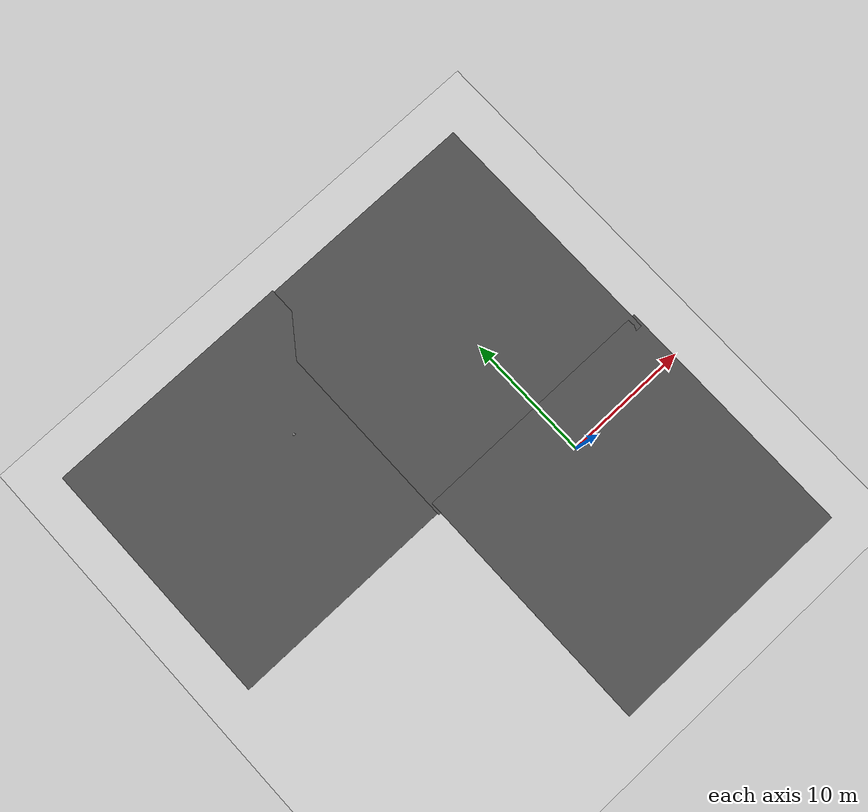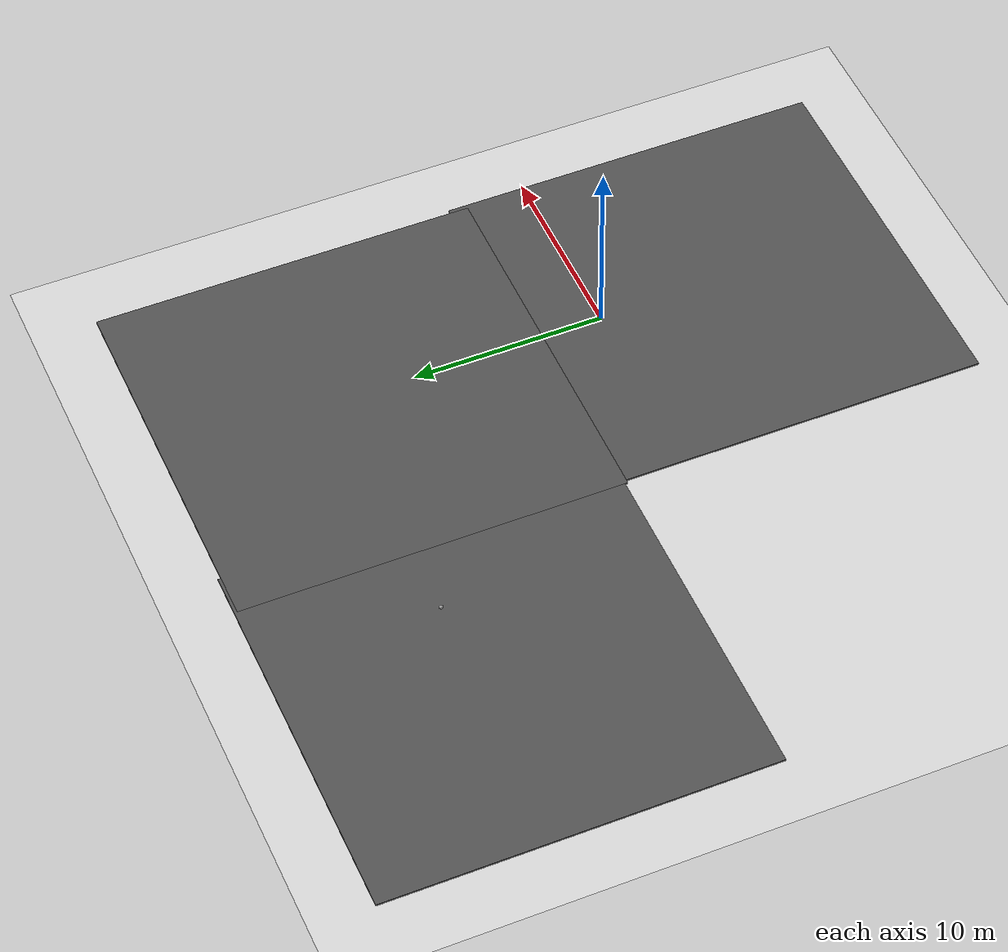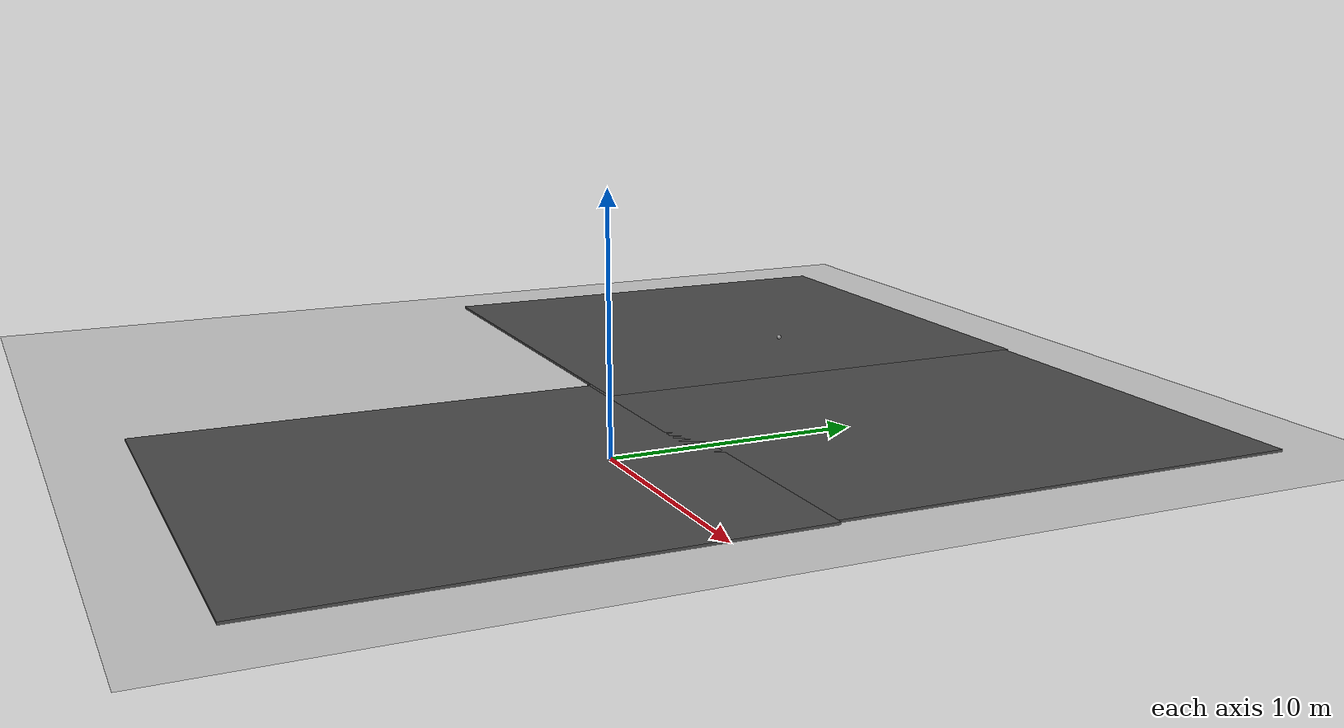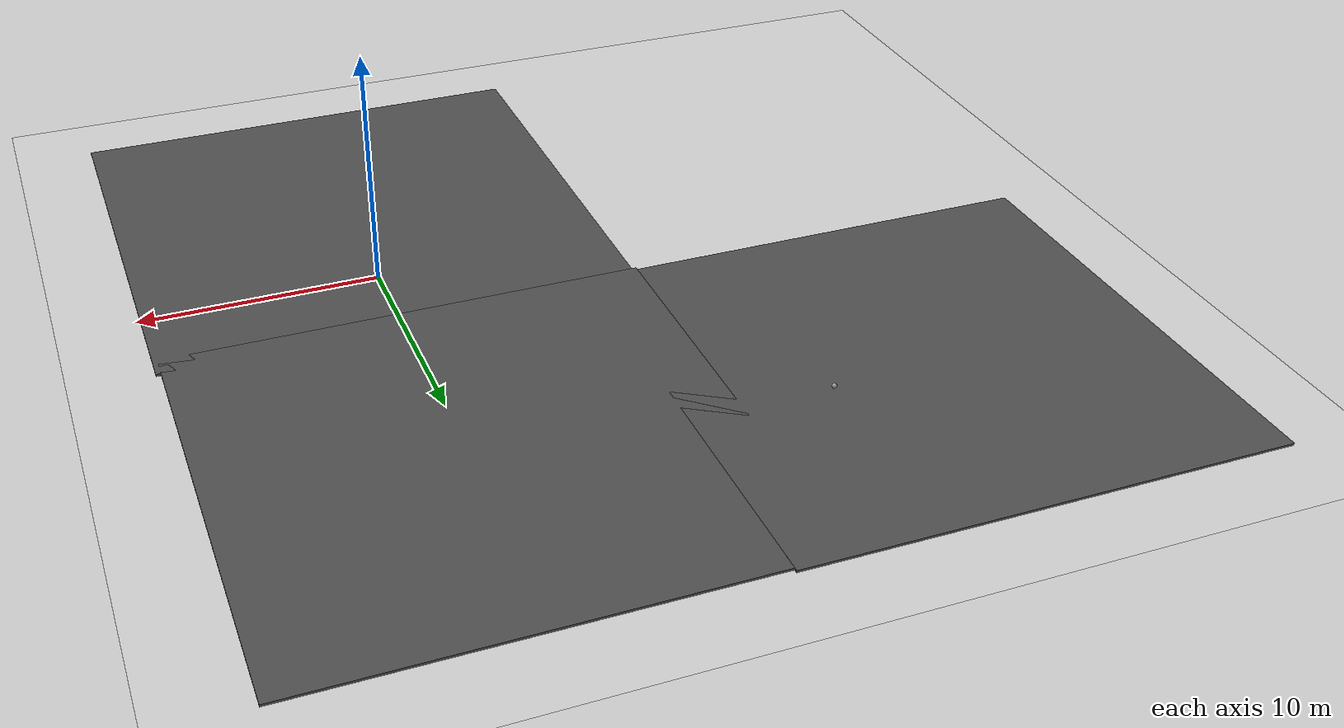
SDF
<sdf version="1.6">
 <world name="default">
  <model name="ground_plane">
   <static>1</static>
   <link name="link">
    <collision name="collision">
     <geometry><plane><normal>0 0 1</normal><size>100 100</size></plane></geometry>
     <surface><friction><ode><mu>100</mu><mu2>50</mu2></ode></friction></surface>
    </collision>
    <visual name="visual">
     <cast_shadows>0</cast_shadows>
     <geometry><plane><normal>0 0 1</normal><size>100 100</size></plane></geometry>
     <material>
      <script><uri>file://media/materials/scripts/gazebo.material</uri><name>Gazebo/Grey</name></script>
     </material>
    </visual>
   </link>
  </model>
  <model name="asphalt_plane">
   <static>1</static>
   <link name="link">
    <collision name="collision"><geometry><box><size>20 20 0.1</size></box></geometry></collision>
    <visual name="visual">
     <cast_shadows>0</cast_shadows>
     <geometry><box><size>20 20 0.1</size></box></geometry>
     <material>
      <script>
       <uri>model://asphalt_plane/materials/scripts</uri>
       <uri>model://asphalt_plane/materials/textures</uri>
       <name>vrc/asphalt</name>
      </script>
     </material>
    </visual>
   </link>
   <pose>-0.157604 -5.87884 0 0 -0 0</pose>
  </model>
  <model name="asphalt_plane_clone_11">
   <static>1</static>
   <link name="link">
    <collision name="collision"><geometry><box><size>20 20 0.1</size></box></geometry></collision>
    <visual name="visual">
     <cast_shadows>0</cast_shadows>
     <geometry><box><size>20 20 0.1</size></box></geometry>
     <material>
      <script>
       <uri>model://asphalt_plane/materials/scripts</uri>
       <uri>model://asphalt_plane/materials/textures</uri>
       <name>vrc/asphalt</name>
      </script>
     </material>
    </visual>
   </link>
   <pose>-18.1701 13.3074 0 0 -0 0</pose>
  </model>
  <model name="asphalt_plane_clone_12">
   <static>1</static>
   <link name="link">
    <collision name="collision"><geometry><box><size>20 20 0.1</size></box></geometry></collision>
    <visual name="visual">
     <cast_shadows>0</cast_shadows>
     <geometry><box><size>20 20 0.1</size></box></geometry>
     <material>
      <script>
       <uri>model://asphalt_plane/materials/scripts</uri>
       <uri>model://asphalt_plane/materials/textures</uri>
       <name>vrc/asphalt</name>
      </script>
     </material>
    </visual>
   </link>
   <pose>-0.356014 13.1578 0 0 -0 0</pose>
  </model>
  <model name="white_ball_0">
   <link name="link_0">
    <inertial>
     <mass>1</mass>
     <inertia><ixx>0.1</ixx><ixy>0</ixy><ixz>0</ixz><iyy>0.1</iyy><iyz>0</iyz><izz>0.1</izz></inertia>
    </inertial>
    <visual name="visual">
     <geometry><sphere><radius>0.1</radius></sphere></geometry>
     <material>
      <lighting>1</lighting>
      <script><uri>file://media/materials/scripts/gazebo.material</uri><name>Gazebo/Grey</name></script>
      <shader type="pixel"><normal_map>__default__</normal_map></shader>
      <ambient>1 1 1 1</ambient>
      <diffuse>1 1 1 1</diffuse>
      <specular>1 1 1 1</specular>
      <emissive>1 1 1 1</emissive>
     </material>
    </visual>
    <collision name="collision">
     <geometry><sphere><radius>0.1</radius></sphere></geometry>
     <surface>
      <friction>
       <ode><mu>1</mu><mu2>1</mu2><fdir1>0 0 0</fdir1><slip1>0</slip1><slip2>0</slip2></ode>
       <torsional>
        <coefficient>1</coefficient>
        <patch_radius>0</patch_radius>
        <surface_radius>0</surface_radius>
        <use_patch_radius>1</use_patch_radius>
        <ode><slip>0</slip></ode>
       </torsional>
      </friction>
      <bounce><restitution_coefficient>0</restitution_coefficient><threshold>1e+06</threshold></bounce>
      <contact>
       <collide_without_contact>0</collide_without_contact>
       <collide_without_contact_bitmask>1</collide_without_contact_bitmask>
       <collide_bitmask>1</collide_bitmask>
       <ode>
        <soft_cfm>0</soft_cfm>
        <soft_erp>0.2</soft_erp>
        <kp>1e+13</kp>
        <kd>1</kd>
        <max_vel>0.01</max_vel>
        <min_depth>0</min_depth>
       </ode>
       <bullet>
        <split_impulse>1</split_impulse>
        <split_impulse_penetration_threshold>-0.01</split_impulse_penetration_threshold>
        <soft_cfm>0</soft_cfm>
        <soft_erp>0.2</soft_erp>
        <kp>1e+13</kp>
        <kd>1</kd>
       </bullet>
      </contact>
     </surface>
    </collision>
   </link>
   <static>0</static>
   <pose>-14.0296 14.3658 0.2898 -1e-05 9e-06 0</pose>
  </model>
 </world>
</sdf>
